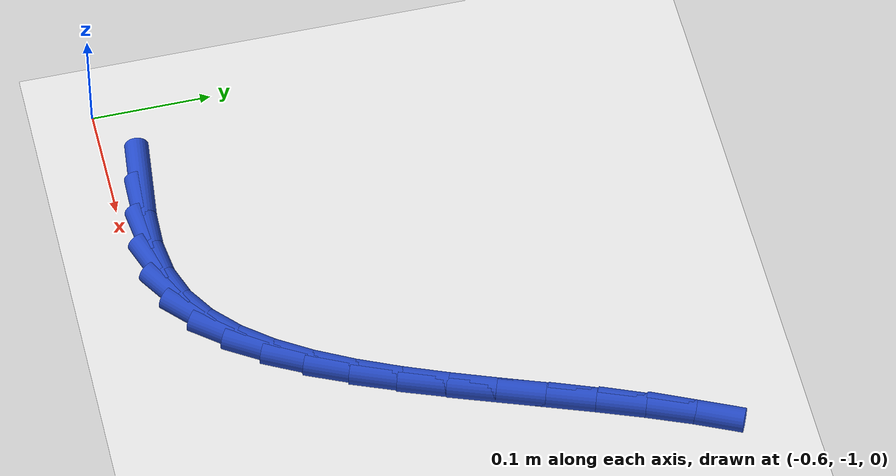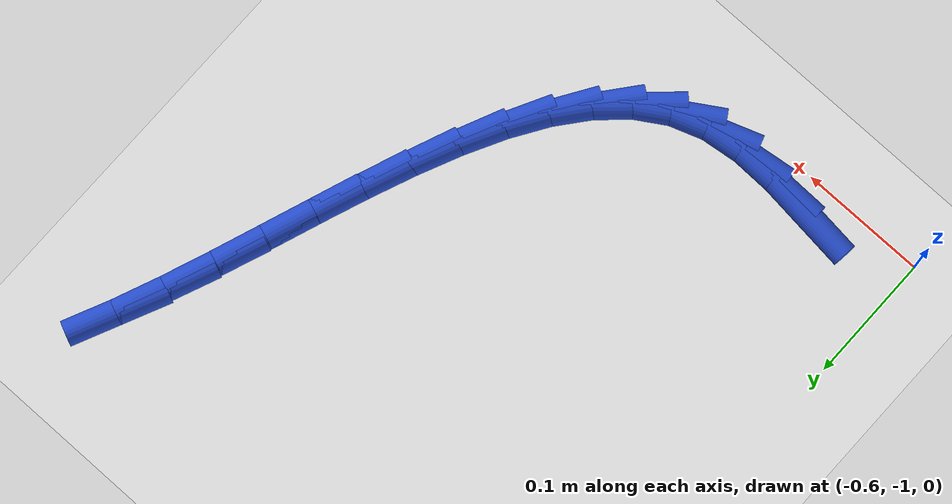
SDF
<sdf version="1.6">
 <world name="default">
  <model name="ground_plane">
   <static>1</static>
   <link name="link">
    <collision name="collision">
     <geometry><plane><normal>0 0 1</normal><size>100 100</size></plane></geometry>
     <surface><friction><ode><mu>100</mu><mu2>50</mu2></ode></friction></surface>
    </collision>
    <visual name="visual">
     <cast_shadows>0</cast_shadows>
     <geometry><plane><normal>0 0 1</normal><size>100 100</size></plane></geometry>
     <material>
      <script><uri>file://media/materials/scripts/gazebo.material</uri><name>Gazebo/WhiteGlow</name></script>
     </material>
    </visual>
   </link>
  </model>
  <model name="line">
   <link name="link_166">
    <pose>-0.5167920931975639 -0.9755827625497347 0.01 0 1.57 -0.10712505771070942</pose>
    <collision name="collision">
     <geometry><cylinder><radius>0.01</radius><length>0.08</length></cylinder></geometry>
    </collision>
    <visual name="visual">
     <material>
      <script><name>Gazebo/Blue</name><uri>file://media/materials/scripts/gazebo.material</uri></script>
     </material>
     <geometry><cylinder><radius>0.01</radius><length>0.08</length></cylinder></geometry>
    </visual>
   </link>
   <link name="link_167">
    <pose>-0.482752306693634 -0.9792432898339088 0.01 0 1.57 -0.019984417203795776</pose>
    <collision name="collision">
     <geometry><cylinder><radius>0.01</radius><length>0.08</length></cylinder></geometry>
    </collision>
    <visual name="visual">
     <material>
      <script><name>Gazebo/Blue</name><uri>file://media/materials/scripts/gazebo.material</uri></script>
     </material>
     <geometry><cylinder><radius>0.01</radius><length>0.08</length></cylinder></geometry>
    </visual>
   </link>
   <link name="link_168">
    <pose>-0.45063602968387423 -0.9798852003697331 0.01 0 1.57 0.12624120692728447</pose>
    <collision name="collision">
     <geometry><cylinder><radius>0.01</radius><length>0.08</length></cylinder></geometry>
    </collision>
    <visual name="visual">
     <material>
      <script><name>Gazebo/Blue</name><uri>file://media/materials/scripts/gazebo.material</uri></script>
     </material>
     <geometry><cylinder><radius>0.01</radius><length>0.08</length></cylinder></geometry>
    </visual>
   </link>
   <link name="link_169">
    <pose>-0.42088460166072994 -0.9761092640101184 0.01 0 1.57 0.336704586581984</pose>
    <collision name="collision">
     <geometry><cylinder><radius>0.01</radius><length>0.08</length></cylinder></geometry>
    </collision>
    <visual name="visual">
     <material>
      <script><name>Gazebo/Blue</name><uri>file://media/materials/scripts/gazebo.material</uri></script>
     </material>
     <geometry><cylinder><radius>0.01</radius><length>0.08</length></cylinder></geometry>
    </visual>
   </link>
   <link name="link_170">
    <pose>-0.3938867223356658 -0.9666591041385364 0.01 0 1.57 0.5568983791668343</pose>
    <collision name="collision">
     <geometry><cylinder><radius>0.01</radius><length>0.08</length></cylinder></geometry>
    </collision>
    <visual name="visual">
     <material>
      <script><name>Gazebo/Blue</name><uri>file://media/materials/scripts/gazebo.material</uri></script>
     </material>
     <geometry><cylinder><radius>0.01</radius><length>0.08</length></cylinder></geometry>
    </visual>
   </link>
   <link name="link_171">
    <pose>-0.3695733094592699 -0.9515206701534988 0.01 0 1.57 0.744314281945649</pose>
    <collision name="collision">
     <geometry><cylinder><radius>0.01</radius><length>0.08</length></cylinder></geometry>
    </collision>
    <visual name="visual">
     <material>
      <script><name>Gazebo/Blue</name><uri>file://media/materials/scripts/gazebo.material</uri></script>
     </material>
     <geometry><cylinder><radius>0.01</radius><length>0.08</length></cylinder></geometry>
    </visual>
   </link>
   <link name="link_172">
    <pose>-0.3476397323678239 -0.9313191413662391 0.01 0 1.57 0.8922803480943569</pose>
    <collision name="collision">
     <geometry><cylinder><radius>0.01</radius><length>0.08</length></cylinder></geometry>
    </collision>
    <visual name="visual">
     <material>
      <script><name>Gazebo/Blue</name><uri>file://media/materials/scripts/gazebo.material</uri></script>
     </material>
     <geometry><cylinder><radius>0.01</radius><length>0.08</length></cylinder></geometry>
    </visual>
   </link>
   <link name="link_173">
    <pose>-0.3277794185039696 -0.9066849669876198 0.01 0 1.57 1.0041234066377598</pose>
    <collision name="collision">
     <geometry><cylinder><radius>0.01</radius><length>0.08</length></cylinder></geometry>
    </collision>
    <visual name="visual">
     <material>
      <script><name>Gazebo/Blue</name><uri>file://media/materials/scripts/gazebo.material</uri></script>
     </material>
     <geometry><cylinder><radius>0.01</radius><length>0.08</length></cylinder></geometry>
    </visual>
   </link>
   <link name="link_174">
    <pose>-0.3096857953103488 -0.878248596228505 0.01 0 1.57 1.0863765322940522</pose>
    <collision name="collision">
     <geometry><cylinder><radius>0.01</radius><length>0.08</length></cylinder></geometry>
    </collision>
    <visual name="visual">
     <material>
      <script><name>Gazebo/Blue</name><uri>file://media/materials/scripts/gazebo.material</uri></script>
     </material>
     <geometry><cylinder><radius>0.01</radius><length>0.08</length></cylinder></geometry>
    </visual>
   </link>
   <link name="link_175">
    <pose>-0.2930522902296033 -0.8466404782997576 0.01 0 1.57 1.1452007977637333</pose>
    <collision name="collision">
     <geometry><cylinder><radius>0.01</radius><length>0.08</length></cylinder></geometry>
    </collision>
    <visual name="visual">
     <material>
      <script><name>Gazebo/Blue</name><uri>file://media/materials/scripts/gazebo.material</uri></script>
     </material>
     <geometry><cylinder><radius>0.01</radius><length>0.08</length></cylinder></geometry>
    </visual>
   </link>
   <link name="link_176">
    <pose>-0.27757233070437515 -0.8124910624122419 0.01 0 1.57 1.185306372869786</pose>
    <collision name="collision">
     <geometry><cylinder><radius>0.01</radius><length>0.08</length></cylinder></geometry>
    </collision>
    <visual name="visual">
     <material>
      <script><name>Gazebo/Blue</name><uri>file://media/materials/scripts/gazebo.material</uri></script>
     </material>
     <geometry><cylinder><radius>0.01</radius><length>0.08</length></cylinder></geometry>
    </visual>
   </link>
   <link name="link_177">
    <pose>-0.2629393441773061 -0.7764307977768206 0.01 0 1.57 1.2099180652197465</pose>
    <collision name="collision">
     <geometry><cylinder><radius>0.01</radius><length>0.08</length></cylinder></geometry>
    </collision>
    <visual name="visual">
     <material>
      <script><name>Gazebo/Blue</name><uri>file://media/materials/scripts/gazebo.material</uri></script>
     </material>
     <geometry><cylinder><radius>0.01</radius><length>0.08</length></cylinder></geometry>
    </visual>
   </link>
   <link name="link_178">
    <pose>-0.2488467580910381 -0.7390901336043577 0.01 0 1.57 1.2210030338236686</pose>
    <collision name="collision">
     <geometry><cylinder><radius>0.01</radius><length>0.08</length></cylinder></geometry>
    </collision>
    <visual name="visual">
     <material>
      <script><name>Gazebo/Blue</name><uri>file://media/materials/scripts/gazebo.material</uri></script>
     </material>
     <geometry><cylinder><radius>0.01</radius><length>0.08</length></cylinder></geometry>
    </visual>
   </link>
   <link name="link_179">
    <pose>-0.23498799988821298 -0.7010995191057163 0.01 0 1.57 1.2194800051738488</pose>
    <collision name="collision">
     <geometry><cylinder><radius>0.01</radius><length>0.08</length></cylinder></geometry>
    </collision>
    <visual name="visual">
     <material>
      <script><name>Gazebo/Blue</name><uri>file://media/materials/scripts/gazebo.material</uri></script>
     </material>
     <geometry><cylinder><radius>0.01</radius><length>0.08</length></cylinder></geometry>
    </visual>
   </link>
   <link name="link_180">
    <pose>-0.22105649701147256 -0.6630894034917597 0.01 0 1.57 1.2053350644970275</pose>
    <collision name="collision">
     <geometry><cylinder><radius>0.01</radius><length>0.08</length></cylinder></geometry>
    </collision>
    <visual name="visual">
     <material>
      <script><name>Gazebo/Blue</name><uri>file://media/materials/scripts/gazebo.material</uri></script>
     </material>
     <geometry><cylinder><radius>0.01</radius><length>0.08</length></cylinder></geometry>
    </visual>
   </link>
   <link name="link_181">
    <pose>-0.20674567690345885 -0.6256902359733519 0.01 0 1.57 1.177632971578852</pose>
    <collision name="collision">
     <geometry><cylinder><radius>0.01</radius><length>0.08</length></cylinder></geometry>
    </collision>
    <visual name="visual">
     <material>
      <script><name>Gazebo/Blue</name><uri>file://media/materials/scripts/gazebo.material</uri></script>
     </material>
     <geometry><cylinder><radius>0.01</radius><length>0.08</length></cylinder></geometry>
    </visual>
   </link>
   <link name="link_182">
    <pose>-0.19174896700681363 -0.5895324657613559 0.01 0 1.57 1.1380709145781298</pose>
    <collision name="collision">
     <geometry><cylinder><radius>0.01</radius><length>0.08</length></cylinder></geometry>
    </collision>
    <visual name="visual">
     <material>
      <script><name>Gazebo/Blue</name><uri>file://media/materials/scripts/gazebo.material</uri></script>
     </material>
     <geometry><cylinder><radius>0.01</radius><length>0.08</length></cylinder></geometry>
    </visual>
   </link>
  </model>
 </world>
</sdf>
